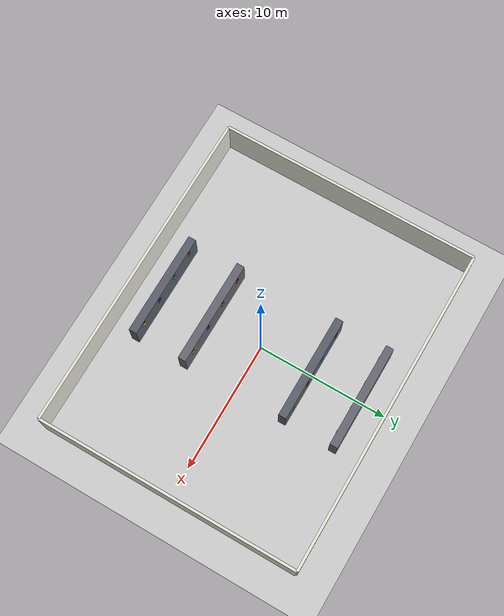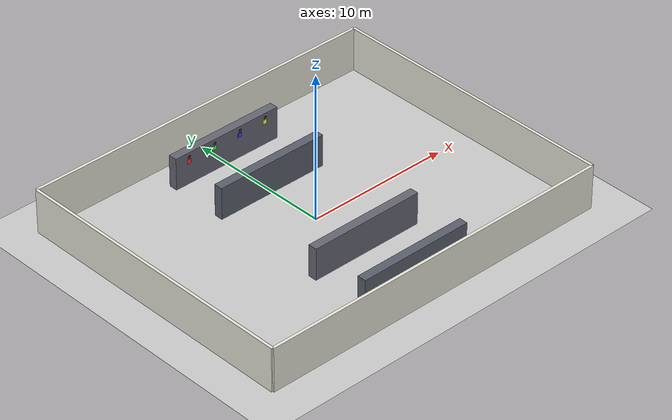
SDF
<?xml version="1.0"?>
<sdf version="1.6">
  <world name="power_room">
    <include>
      <uri>model://sun</uri>
    </include>

    <include>
      <uri>model://ground_plane</uri>
    </include>

    <physics type="ode">
      <real_time_update_rate>1000.0</real_time_update_rate>
      <max_step_size>0.001</max_step_size>
    </physics>

    <!-- Walls - 25m x 20m room -->
    <model name="wall_north">
      <static>true</static>
      <pose>0 10 1.5 0 0 0</pose>
      <link name="link">
        <collision name="collision"><geometry><box><size>25 0.2 3</size></box></geometry></collision>
        <visual name="visual"><geometry><box><size>25 0.2 3</size></box></geometry>
          <material><ambient>0.9 0.9 0.85 1</ambient></material></visual>
      </link>
    </model>
    <model name="wall_south">
      <static>true</static>
      <pose>0 -10 1.5 0 0 0</pose>
      <link name="link">
        <collision name="collision"><geometry><box><size>25 0.2 3</size></box></geometry></collision>
        <visual name="visual"><geometry><box><size>25 0.2 3</size></box></geometry>
          <material><ambient>0.9 0.9 0.85 1</ambient></material></visual>
      </link>
    </model>
    <model name="wall_east">
      <static>true</static>
      <pose>12.5 0 1.5 0 0 0</pose>
      <link name="link">
        <collision name="collision"><geometry><box><size>0.2 20 3</size></box></geometry></collision>
        <visual name="visual"><geometry><box><size>0.2 20 3</size></box></geometry>
          <material><ambient>0.9 0.9 0.85 1</ambient></material></visual>
      </link>
    </model>
    <model name="wall_west">
      <static>true</static>
      <pose>-12.5 0 1.5 0 0 0</pose>
      <link name="link">
        <collision name="collision"><geometry><box><size>0.2 20 3</size></box></geometry></collision>
        <visual name="visual"><geometry><box><size>0.2 20 3</size></box></geometry>
          <material><ambient>0.9 0.9 0.85 1</ambient></material></visual>
      </link>
    </model>

    <!-- Row 1: Y=8 柜子排 + 标记 1A(红) 1B(绿) 1C(蓝) 1D(黄) -->
    <model name="cabinet_row_1">
      <static>true</static>
      <pose>0 8 1.1 0 0 0</pose>
      <link name="link">
        <collision name="collision"><geometry><box><size>8 0.6 2.2</size></box></geometry></collision>
        <visual name="visual"><geometry><box><size>8 0.6 2.2</size></box></geometry>
          <material><ambient>0.35 0.35 0.4 1</ambient><diffuse>0.4 0.4 0.45 1</diffuse></material></visual>
        <!-- 标记 1A(红) x=-3, 南面 -->
        <visual name="mark_1A"><pose>-3 -0.31 0.5 0 0 0</pose><geometry><box><size>0.3 0.02 0.3</size></box></geometry>
          <material><ambient>1 0 0 1</ambient><diffuse>1 0.2 0.2 1</diffuse><emissive>0.5 0 0 1</emissive></material></visual>
        <!-- 标记 1B(绿) x=-1, 南面 -->
        <visual name="mark_1B"><pose>-1 -0.31 0.5 0 0 0</pose><geometry><box><size>0.3 0.02 0.3</size></box></geometry>
          <material><ambient>0 1 0 1</ambient><diffuse>0.2 1 0.2 1</diffuse><emissive>0 0.5 0 1</emissive></material></visual>
        <!-- 标记 1C(蓝) x=1, 南面 -->
        <visual name="mark_1C"><pose>1 -0.31 0.5 0 0 0</pose><geometry><box><size>0.3 0.02 0.3</size></box></geometry>
          <material><ambient>0 0 1 1</ambient><diffuse>0.2 0.2 1 1</diffuse><emissive>0 0 0.5 1</emissive></material></visual>
        <!-- 标记 1D(黄) x=3, 南面 -->
        <visual name="mark_1D"><pose>3 -0.31 0.5 0 0 0</pose><geometry><box><size>0.3 0.02 0.3</size></box></geometry>
          <material><ambient>1 1 0 1</ambient><diffuse>1 1 0.2 1</diffuse><emissive>0.5 0.5 0 1</emissive></material></visual>
        <!-- 高位仪表盘 1A(白底黑框) x=-3, 高度z=0.85 (实际约1.95m) -->
        <visual name="meter_1A"><pose>-3 -0.31 0.85 1.57 0 0</pose><geometry><cylinder><radius>0.12</radius><length>0.02</length></cylinder></geometry>
          <material><ambient>0.95 0.95 0.95 1</ambient><diffuse>1 1 1 1</diffuse></material></visual>
        <visual name="meter_1A_ring"><pose>-3 -0.32 0.85 1.57 0 0</pose><geometry><cylinder><radius>0.13</radius><length>0.01</length></cylinder></geometry>
          <material><ambient>0.1 0.1 0.1 1</ambient><diffuse>0.15 0.15 0.15 1</diffuse></material></visual>
        <!-- 高位仪表盘 1B -->
        <visual name="meter_1B"><pose>-1 -0.31 0.85 1.57 0 0</pose><geometry><cylinder><radius>0.12</radius><length>0.02</length></cylinder></geometry>
          <material><ambient>0.95 0.95 0.95 1</ambient><diffuse>1 1 1 1</diffuse></material></visual>
        <visual name="meter_1B_ring"><pose>-1 -0.32 0.85 1.57 0 0</pose><geometry><cylinder><radius>0.13</radius><length>0.01</length></cylinder></geometry>
          <material><ambient>0.1 0.1 0.1 1</ambient><diffuse>0.15 0.15 0.15 1</diffuse></material></visual>
        <!-- 高位仪表盘 1C -->
        <visual name="meter_1C"><pose>1 -0.31 0.85 1.57 0 0</pose><geometry><cylinder><radius>0.12</radius><length>0.02</length></cylinder></geometry>
          <material><ambient>0.95 0.95 0.95 1</ambient><diffuse>1 1 1 1</diffuse></material></visual>
        <visual name="meter_1C_ring"><pose>1 -0.32 0.85 1.57 0 0</pose><geometry><cylinder><radius>0.13</radius><length>0.01</length></cylinder></geometry>
          <material><ambient>0.1 0.1 0.1 1</ambient><diffuse>0.15 0.15 0.15 1</diffuse></material></visual>
        <!-- 高位仪表盘 1D -->
        <visual name="meter_1D"><pose>3 -0.31 0.85 1.57 0 0</pose><geometry><cylinder><radius>0.12</radius><length>0.02</length></cylinder></geometry>
          <material><ambient>0.95 0.95 0.95 1</ambient><diffuse>1 1 1 1</diffuse></material></visual>
        <visual name="meter_1D_ring"><pose>3 -0.32 0.85 1.57 0 0</pose><geometry><cylinder><radius>0.13</radius><length>0.01</length></cylinder></geometry>
          <material><ambient>0.1 0.1 0.1 1</ambient><diffuse>0.15 0.15 0.15 1</diffuse></material></visual>
      </link>
    </model>

    <!-- Row 2: Y=4 柜子排 + 标记 2A(红) 2B(绿) 2C(蓝) 2D(黄) -->
    <model name="cabinet_row_2">
      <static>true</static>
      <pose>0 4 1.1 0 0 0</pose>
      <link name="link">
        <collision name="collision"><geometry><box><size>8 0.6 2.2</size></box></geometry></collision>
        <visual name="visual"><geometry><box><size>8 0.6 2.2</size></box></geometry>
          <material><ambient>0.3 0.32 0.38 1</ambient><diffuse>0.35 0.37 0.42 1</diffuse></material></visual>
        <!-- 标记 2A(红) x=-3 -->
        <visual name="mark_2A"><pose>-3 0.31 0.5 0 0 0</pose><geometry><box><size>0.3 0.02 0.3</size></box></geometry>
          <material><ambient>1 0 0 1</ambient><diffuse>1 0.2 0.2 1</diffuse><emissive>0.5 0 0 1</emissive></material></visual>
        <!-- 标记 2B(绿) x=-1 -->
        <visual name="mark_2B"><pose>-1 0.31 0.5 0 0 0</pose><geometry><box><size>0.3 0.02 0.3</size></box></geometry>
          <material><ambient>0 1 0 1</ambient><diffuse>0.2 1 0.2 1</diffuse><emissive>0 0.5 0 1</emissive></material></visual>
        <!-- 标记 2C(蓝) x=1 -->
        <visual name="mark_2C"><pose>1 0.31 0.5 0 0 0</pose><geometry><box><size>0.3 0.02 0.3</size></box></geometry>
          <material><ambient>0 0 1 1</ambient><diffuse>0.2 0.2 1 1</diffuse><emissive>0 0 0.5 1</emissive></material></visual>
        <!-- 标记 2D(黄) x=3 -->
        <visual name="mark_2D"><pose>3 0.31 0.5 0 0 0</pose><geometry><box><size>0.3 0.02 0.3</size></box></geometry>
          <material><ambient>1 1 0 1</ambient><diffuse>1 1 0.2 1</diffuse><emissive>0.5 0.5 0 1</emissive></material></visual>
        <!-- 高位仪表盘 2A-2D (北面 Y+0.31) -->
        <visual name="meter_2A"><pose>-3 0.31 0.85 1.57 0 0</pose><geometry><cylinder><radius>0.12</radius><length>0.02</length></cylinder></geometry>
          <material><ambient>0.95 0.95 0.95 1</ambient><diffuse>1 1 1 1</diffuse></material></visual>
        <visual name="meter_2A_ring"><pose>-3 0.32 0.85 1.57 0 0</pose><geometry><cylinder><radius>0.13</radius><length>0.01</length></cylinder></geometry>
          <material><ambient>0.1 0.1 0.1 1</ambient><diffuse>0.15 0.15 0.15 1</diffuse></material></visual>
        <visual name="meter_2B"><pose>-1 0.31 0.85 1.57 0 0</pose><geometry><cylinder><radius>0.12</radius><length>0.02</length></cylinder></geometry>
          <material><ambient>0.95 0.95 0.95 1</ambient><diffuse>1 1 1 1</diffuse></material></visual>
        <visual name="meter_2B_ring"><pose>-1 0.32 0.85 1.57 0 0</pose><geometry><cylinder><radius>0.13</radius><length>0.01</length></cylinder></geometry>
          <material><ambient>0.1 0.1 0.1 1</ambient><diffuse>0.15 0.15 0.15 1</diffuse></material></visual>
        <visual name="meter_2C"><pose>1 0.31 0.85 1.57 0 0</pose><geometry><cylinder><radius>0.12</radius><length>0.02</length></cylinder></geometry>
          <material><ambient>0.95 0.95 0.95 1</ambient><diffuse>1 1 1 1</diffuse></material></visual>
        <visual name="meter_2C_ring"><pose>1 0.32 0.85 1.57 0 0</pose><geometry><cylinder><radius>0.13</radius><length>0.01</length></cylinder></geometry>
          <material><ambient>0.1 0.1 0.1 1</ambient><diffuse>0.15 0.15 0.15 1</diffuse></material></visual>
        <visual name="meter_2D"><pose>3 0.31 0.85 1.57 0 0</pose><geometry><cylinder><radius>0.12</radius><length>0.02</length></cylinder></geometry>
          <material><ambient>0.95 0.95 0.95 1</ambient><diffuse>1 1 1 1</diffuse></material></visual>
        <visual name="meter_2D_ring"><pose>3 0.32 0.85 1.57 0 0</pose><geometry><cylinder><radius>0.13</radius><length>0.01</length></cylinder></geometry>
          <material><ambient>0.1 0.1 0.1 1</ambient><diffuse>0.15 0.15 0.15 1</diffuse></material></visual>
      </link>
    </model>

    <!-- Row 3: Y=-4 柜子排 + 标记 3A(红) 3B(绿) 3C(蓝) 3D(黄) -->
    <model name="cabinet_row_3">
      <static>true</static>
      <pose>0 -4 1.1 0 0 0</pose>
      <link name="link">
        <collision name="collision"><geometry><box><size>8 0.6 2.2</size></box></geometry></collision>
        <visual name="visual"><geometry><box><size>8 0.6 2.2</size></box></geometry>
          <material><ambient>0.35 0.35 0.4 1</ambient><diffuse>0.4 0.4 0.45 1</diffuse></material></visual>
        <!-- 标记 3A(红) x=-3 -->
        <visual name="mark_3A"><pose>-3 0.31 0.5 0 0 0</pose><geometry><box><size>0.3 0.02 0.3</size></box></geometry>
          <material><ambient>1 0 0 1</ambient><diffuse>1 0.2 0.2 1</diffuse><emissive>0.5 0 0 1</emissive></material></visual>
        <!-- 标记 3B(绿) x=-1 -->
        <visual name="mark_3B"><pose>-1 0.31 0.5 0 0 0</pose><geometry><box><size>0.3 0.02 0.3</size></box></geometry>
          <material><ambient>0 1 0 1</ambient><diffuse>0.2 1 0.2 1</diffuse><emissive>0 0.5 0 1</emissive></material></visual>
        <!-- 标记 3C(蓝) x=1 -->
        <visual name="mark_3C"><pose>1 0.31 0.5 0 0 0</pose><geometry><box><size>0.3 0.02 0.3</size></box></geometry>
          <material><ambient>0 0 1 1</ambient><diffuse>0.2 0.2 1 1</diffuse><emissive>0 0 0.5 1</emissive></material></visual>
        <!-- 标记 3D(黄) x=3 -->
        <visual name="mark_3D"><pose>3 0.31 0.5 0 0 0</pose><geometry><box><size>0.3 0.02 0.3</size></box></geometry>
          <material><ambient>1 1 0 1</ambient><diffuse>1 1 0.2 1</diffuse><emissive>0.5 0.5 0 1</emissive></material></visual>
        <!-- 高位仪表盘 3A-3D (北面) -->
        <visual name="meter_3A"><pose>-3 0.31 0.85 1.57 0 0</pose><geometry><cylinder><radius>0.12</radius><length>0.02</length></cylinder></geometry>
          <material><ambient>0.95 0.95 0.95 1</ambient><diffuse>1 1 1 1</diffuse></material></visual>
        <visual name="meter_3A_ring"><pose>-3 0.32 0.85 1.57 0 0</pose><geometry><cylinder><radius>0.13</radius><length>0.01</length></cylinder></geometry>
          <material><ambient>0.1 0.1 0.1 1</ambient><diffuse>0.15 0.15 0.15 1</diffuse></material></visual>
        <visual name="meter_3B"><pose>-1 0.31 0.85 1.57 0 0</pose><geometry><cylinder><radius>0.12</radius><length>0.02</length></cylinder></geometry>
          <material><ambient>0.95 0.95 0.95 1</ambient><diffuse>1 1 1 1</diffuse></material></visual>
        <visual name="meter_3B_ring"><pose>-1 0.32 0.85 1.57 0 0</pose><geometry><cylinder><radius>0.13</radius><length>0.01</length></cylinder></geometry>
          <material><ambient>0.1 0.1 0.1 1</ambient><diffuse>0.15 0.15 0.15 1</diffuse></material></visual>
        <visual name="meter_3C"><pose>1 0.31 0.85 1.57 0 0</pose><geometry><cylinder><radius>0.12</radius><length>0.02</length></cylinder></geometry>
          <material><ambient>0.95 0.95 0.95 1</ambient><diffuse>1 1 1 1</diffuse></material></visual>
        <visual name="meter_3C_ring"><pose>1 0.32 0.85 1.57 0 0</pose><geometry><cylinder><radius>0.13</radius><length>0.01</length></cylinder></geometry>
          <material><ambient>0.1 0.1 0.1 1</ambient><diffuse>0.15 0.15 0.15 1</diffuse></material></visual>
        <visual name="meter_3D"><pose>3 0.31 0.85 1.57 0 0</pose><geometry><cylinder><radius>0.12</radius><length>0.02</length></cylinder></geometry>
          <material><ambient>0.95 0.95 0.95 1</ambient><diffuse>1 1 1 1</diffuse></material></visual>
        <visual name="meter_3D_ring"><pose>3 0.32 0.85 1.57 0 0</pose><geometry><cylinder><radius>0.13</radius><length>0.01</length></cylinder></geometry>
          <material><ambient>0.1 0.1 0.1 1</ambient><diffuse>0.15 0.15 0.15 1</diffuse></material></visual>
      </link>
    </model>

    <!-- Row 4: Y=-8 柜子排 + 标记 4A(红) 4B(绿) 4C(蓝) 4D(黄) -->
    <model name="cabinet_row_4">
      <static>true</static>
      <pose>0 -8 1.1 0 0 0</pose>
      <link name="link">
        <collision name="collision"><geometry><box><size>8 0.6 2.2</size></box></geometry></collision>
        <visual name="visual"><geometry><box><size>8 0.6 2.2</size></box></geometry>
          <material><ambient>0.3 0.32 0.38 1</ambient><diffuse>0.35 0.37 0.42 1</diffuse></material></visual>
        <!-- 标记 4A(红) x=-3 -->
        <visual name="mark_4A"><pose>-3 0.31 0.5 0 0 0</pose><geometry><box><size>0.3 0.02 0.3</size></box></geometry>
          <material><ambient>1 0 0 1</ambient><diffuse>1 0.2 0.2 1</diffuse><emissive>0.5 0 0 1</emissive></material></visual>
        <!-- 标记 4B(绿) x=-1 -->
        <visual name="mark_4B"><pose>-1 0.31 0.5 0 0 0</pose><geometry><box><size>0.3 0.02 0.3</size></box></geometry>
          <material><ambient>0 1 0 1</ambient><diffuse>0.2 1 0.2 1</diffuse><emissive>0 0.5 0 1</emissive></material></visual>
        <!-- 标记 4C(蓝) x=1 -->
        <visual name="mark_4C"><pose>1 0.31 0.5 0 0 0</pose><geometry><box><size>0.3 0.02 0.3</size></box></geometry>
          <material><ambient>0 0 1 1</ambient><diffuse>0.2 0.2 1 1</diffuse><emissive>0 0 0.5 1</emissive></material></visual>
        <!-- 标记 4D(黄) x=3 -->
        <visual name="mark_4D"><pose>3 0.31 0.5 0 0 0</pose><geometry><box><size>0.3 0.02 0.3</size></box></geometry>
          <material><ambient>1 1 0 1</ambient><diffuse>1 1 0.2 1</diffuse><emissive>0.5 0.5 0 1</emissive></material></visual>
        <!-- 高位仪表盘 4A-4D (北面) -->
        <visual name="meter_4A"><pose>-3 0.31 0.85 1.57 0 0</pose><geometry><cylinder><radius>0.12</radius><length>0.02</length></cylinder></geometry>
          <material><ambient>0.95 0.95 0.95 1</ambient><diffuse>1 1 1 1</diffuse></material></visual>
        <visual name="meter_4A_ring"><pose>-3 0.32 0.85 1.57 0 0</pose><geometry><cylinder><radius>0.13</radius><length>0.01</length></cylinder></geometry>
          <material><ambient>0.1 0.1 0.1 1</ambient><diffuse>0.15 0.15 0.15 1</diffuse></material></visual>
        <visual name="meter_4B"><pose>-1 0.31 0.85 1.57 0 0</pose><geometry><cylinder><radius>0.12</radius><length>0.02</length></cylinder></geometry>
          <material><ambient>0.95 0.95 0.95 1</ambient><diffuse>1 1 1 1</diffuse></material></visual>
        <visual name="meter_4B_ring"><pose>-1 0.32 0.85 1.57 0 0</pose><geometry><cylinder><radius>0.13</radius><length>0.01</length></cylinder></geometry>
          <material><ambient>0.1 0.1 0.1 1</ambient><diffuse>0.15 0.15 0.15 1</diffuse></material></visual>
        <visual name="meter_4C"><pose>1 0.31 0.85 1.57 0 0</pose><geometry><cylinder><radius>0.12</radius><length>0.02</length></cylinder></geometry>
          <material><ambient>0.95 0.95 0.95 1</ambient><diffuse>1 1 1 1</diffuse></material></visual>
        <visual name="meter_4C_ring"><pose>1 0.32 0.85 1.57 0 0</pose><geometry><cylinder><radius>0.13</radius><length>0.01</length></cylinder></geometry>
          <material><ambient>0.1 0.1 0.1 1</ambient><diffuse>0.15 0.15 0.15 1</diffuse></material></visual>
        <visual name="meter_4D"><pose>3 0.31 0.85 1.57 0 0</pose><geometry><cylinder><radius>0.12</radius><length>0.02</length></cylinder></geometry>
          <material><ambient>0.95 0.95 0.95 1</ambient><diffuse>1 1 1 1</diffuse></material></visual>
        <visual name="meter_4D_ring"><pose>3 0.32 0.85 1.57 0 0</pose><geometry><cylinder><radius>0.13</radius><length>0.01</length></cylinder></geometry>
          <material><ambient>0.1 0.1 0.1 1</ambient><diffuse>0.15 0.15 0.15 1</diffuse></material></visual>
      </link>
    </model>

  </world>
</sdf>
